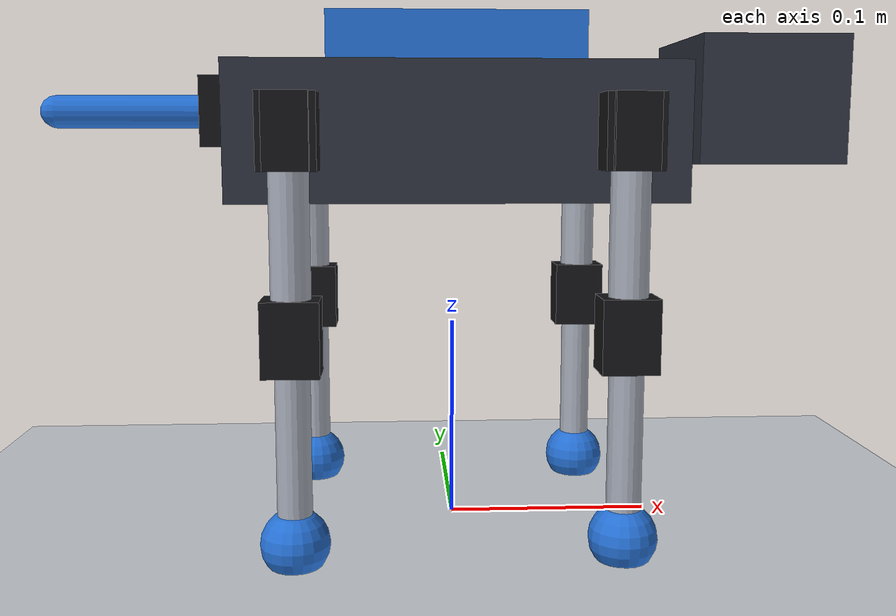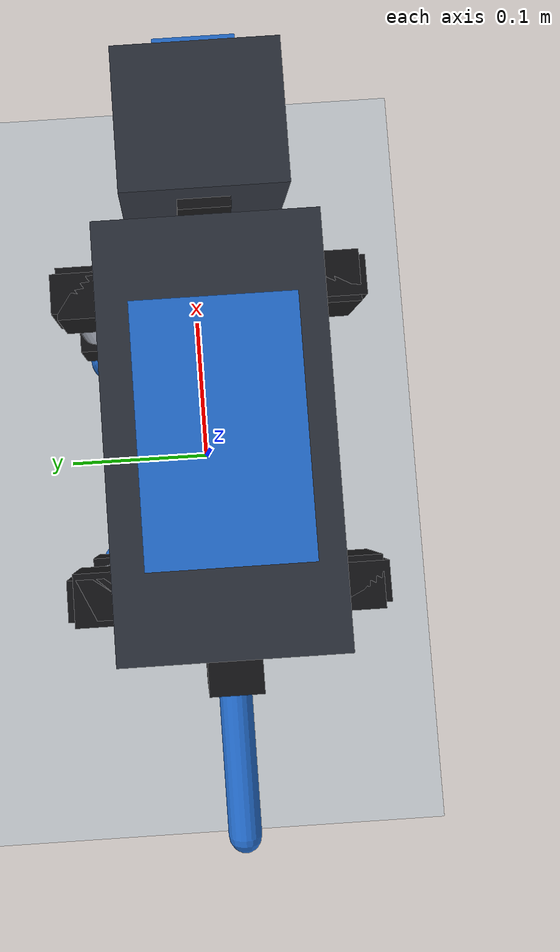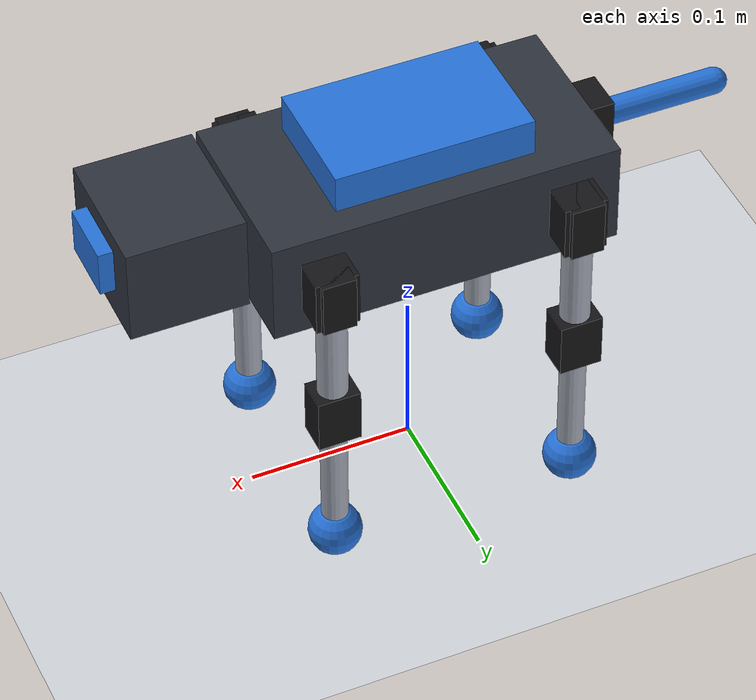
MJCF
<mujoco model="MicroDog_preview">
  <compiler angle="degree" autolimits="true"/>
  <option timestep="0.002" gravity="0 0 -9.81" integrator="implicitfast"/>

  <visual>
    <headlight diffuse="0.75 0.75 0.75" ambient="0.35 0.35 0.35" specular="0.2 0.2 0.2"/>
    <global azimuth="135" elevation="-18"/>
  </visual>

  <default>
    <joint damping="0.12" armature="0.0002"/>
    <geom friction="0.9 0.02 0.002" condim="3"/>
    <position kp="2.5" forcerange="-0.52 0.52"/>
  </default>

  <asset>
    <material name="body_mat" rgba="0.18 0.20 0.24 1"/>
    <material name="motor_mat" rgba="0.08 0.08 0.09 1"/>
    <material name="link_mat" rgba="0.65 0.67 0.72 1"/>
    <material name="accent_mat" rgba="0.15 0.45 0.85 1"/>
    <material name="ground_mat" rgba="0.82 0.84 0.86 1"/>
  </asset>

  <!-- 충돌 비트: 1=일반 형상, 2=몸통, 4=머리 yaw 모터,
       8=머리 roll 모터/외피, 16=꼬리 pitch 및 다리 upper 모터.
       2↔16, 4↔8만 제외하며 나머지 자기충돌과 지면 충돌은 유지한다. -->
  <worldbody>
    <light pos="0 -1 2" dir="0 0 -1" directional="true"/>
    <geom name="floor" type="plane" size="2 2 0.05" material="ground_mat"/>

    <!-- ~25 cm class MicroDog preview body -->
    <body name="base" pos="0 0 0.19469996363678">
      <freejoint/>
      <geom contype="2" conaffinity="15" name="torso" type="box" size="0.105 0.055 0.032"
            mass="0.42" material="body_mat"/>

      <!-- simple top electronics/battery volume -->
      <geom name="top_pack" type="box" pos="0 0 0.043"
            size="0.060 0.038 0.012" mass="0.13" material="accent_mat"/>

      <!-- head, 3 DOF visual/servo chain -->
      <body name="head_yaw" pos="0.118 0 0.015">
        <joint name="head_yaw_joint" type="hinge" axis="0 0 1" range="-70 70"/>
        <geom contype="4" conaffinity="23" type="box" size="0.010 0.013 0.017" mass="0.018" material="motor_mat"/>
        <body name="head_pitch">
          <joint name="head_pitch_joint" type="hinge" axis="0 1 0" range="-45 45"/>
          <geom type="box" size="0.010 0.013 0.017" mass="0.018" material="motor_mat"/>
          <body name="head_roll">
            <joint name="head_roll_joint" type="hinge" axis="1 0 0" range="-35 35"/>
            <geom contype="8" conaffinity="27" type="box" size="0.010 0.013 0.017" mass="0.018" material="motor_mat"/>
            <geom contype="8" conaffinity="27" name="head_shell" type="box" pos="0.030 0 0"
                  size="0.035 0.040 0.030" mass="0.07" material="body_mat"/>
            <geom name="camera" type="box" pos="0.066 0 0.004"
                  size="0.008 0.020 0.014" mass="0.01" material="accent_mat"/>
          </body>
        </body>
      </body>

      <!-- tail, 2 DOF -->
      <body name="tail_yaw" pos="-0.112 0 0.010">
        <joint name="tail_yaw_joint" type="hinge" axis="0 0 1" range="-55 55"/>
        <geom type="box" size="0.010 0.013 0.017" mass="0.018" material="motor_mat"/>
        <body name="tail_pitch">
          <joint name="tail_pitch_joint" type="hinge" axis="0 1 0" range="-35 35"/>
          <geom contype="16" conaffinity="29" type="box" size="0.010 0.013 0.017" mass="0.018" material="motor_mat"/>
          <geom type="capsule" fromto="-0.005 0 0 -0.080 0 0"
                size="0.008" mass="0.025" material="accent_mat"/>
        </body>
      </body>

      <!-- FRONT LEFT -->
      <body name="fl_hip_roll" pos="0.075 0.065 0">
        <joint name="fl_hip_roll_joint" type="hinge" axis="1 0 0" range="-35 35"/>
        <geom type="box" size="0.010 0.013 0.017" mass="0.018" material="motor_mat"/>
        <body name="fl_upper">
          <joint name="fl_hip_pitch_joint" type="hinge" axis="0 1 0" range="-80 80"/>
          <geom contype="16" conaffinity="29" type="box" size="0.013 0.010 0.017" mass="0.018" material="motor_mat"/>
          <geom type="capsule" fromto="0 0 -0.015 0 0 -0.090"
                size="0.009" mass="0.025" material="link_mat"/>
          <body name="fl_lower" pos="0 0 -0.090">
            <joint name="fl_knee_joint" type="hinge" axis="0 1 0" range="-5 135"/>
            <geom type="box" size="0.013 0.010 0.017" mass="0.018" material="motor_mat"/>
            <geom type="capsule" fromto="0 0 -0.015 0 0 -0.090"
                  size="0.008" mass="0.020" material="link_mat"/>
            <geom type="sphere" pos="0 0 -0.095" size="0.016"
                  mass="0.008" friction="1.2 0.03 0.003" material="accent_mat"/>
          </body>
        </body>
      </body>

      <!-- FRONT RIGHT -->
      <body name="fr_hip_roll" pos="0.075 -0.065 0">
        <joint name="fr_hip_roll_joint" type="hinge" axis="1 0 0" range="-35 35"/>
        <geom type="box" size="0.010 0.013 0.017" mass="0.018" material="motor_mat"/>
        <body name="fr_upper">
          <joint name="fr_hip_pitch_joint" type="hinge" axis="0 1 0" range="-80 80"/>
          <geom contype="16" conaffinity="29" type="box" size="0.013 0.010 0.017" mass="0.018" material="motor_mat"/>
          <geom type="capsule" fromto="0 0 -0.015 0 0 -0.090"
                size="0.009" mass="0.025" material="link_mat"/>
          <body name="fr_lower" pos="0 0 -0.090">
            <joint name="fr_knee_joint" type="hinge" axis="0 1 0" range="-5 135"/>
            <geom type="box" size="0.013 0.010 0.017" mass="0.018" material="motor_mat"/>
            <geom type="capsule" fromto="0 0 -0.015 0 0 -0.090"
                  size="0.008" mass="0.020" material="link_mat"/>
            <geom type="sphere" pos="0 0 -0.095" size="0.016"
                  mass="0.008" friction="1.2 0.03 0.003" material="accent_mat"/>
          </body>
        </body>
      </body>

      <!-- REAR LEFT -->
      <body name="rl_hip_roll" pos="-0.075 0.065 0">
        <joint name="rl_hip_roll_joint" type="hinge" axis="1 0 0" range="-35 35"/>
        <geom type="box" size="0.010 0.013 0.017" mass="0.018" material="motor_mat"/>
        <body name="rl_upper">
          <joint name="rl_hip_pitch_joint" type="hinge" axis="0 1 0" range="-80 80"/>
          <geom contype="16" conaffinity="29" type="box" size="0.013 0.010 0.017" mass="0.018" material="motor_mat"/>
          <geom type="capsule" fromto="0 0 -0.015 0 0 -0.090"
                size="0.009" mass="0.025" material="link_mat"/>
          <body name="rl_lower" pos="0 0 -0.090">
            <joint name="rl_knee_joint" type="hinge" axis="0 1 0" range="-5 135"/>
            <geom type="box" size="0.013 0.010 0.017" mass="0.018" material="motor_mat"/>
            <geom type="capsule" fromto="0 0 -0.015 0 0 -0.090"
                  size="0.008" mass="0.020" material="link_mat"/>
            <geom type="sphere" pos="0 0 -0.095" size="0.016"
                  mass="0.008" friction="1.2 0.03 0.003" material="accent_mat"/>
          </body>
        </body>
      </body>

      <!-- REAR RIGHT -->
      <body name="rr_hip_roll" pos="-0.075 -0.065 0">
        <joint name="rr_hip_roll_joint" type="hinge" axis="1 0 0" range="-35 35"/>
        <geom type="box" size="0.010 0.013 0.017" mass="0.018" material="motor_mat"/>
        <body name="rr_upper">
          <joint name="rr_hip_pitch_joint" type="hinge" axis="0 1 0" range="-80 80"/>
          <geom contype="16" conaffinity="29" type="box" size="0.013 0.010 0.017" mass="0.018" material="motor_mat"/>
          <geom type="capsule" fromto="0 0 -0.015 0 0 -0.090"
                size="0.009" mass="0.025" material="link_mat"/>
          <body name="rr_lower" pos="0 0 -0.090">
            <joint name="rr_knee_joint" type="hinge" axis="0 1 0" range="-5 135"/>
            <geom type="box" size="0.013 0.010 0.017" mass="0.018" material="motor_mat"/>
            <geom type="capsule" fromto="0 0 -0.015 0 0 -0.090"
                  size="0.008" mass="0.020" material="link_mat"/>
            <geom type="sphere" pos="0 0 -0.095" size="0.016"
                  mass="0.008" friction="1.2 0.03 0.003" material="accent_mat"/>
          </body>
        </body>
      </body>
    </body>
  </worldbody>

  <actuator>
    <position joint="fl_hip_roll_joint"  ctrlrange="-0.6108652381980153 0.6108652381980153"/>
    <position joint="fl_hip_pitch_joint" ctrlrange="-1.3962634015954636 1.3962634015954636"/>
    <position joint="fl_knee_joint"      ctrlrange="-0.087266462599716474 2.3561944901923448"/>

    <position joint="fr_hip_roll_joint"  ctrlrange="-0.6108652381980153 0.6108652381980153"/>
    <position joint="fr_hip_pitch_joint" ctrlrange="-1.3962634015954636 1.3962634015954636"/>
    <position joint="fr_knee_joint"      ctrlrange="-0.087266462599716474 2.3561944901923448"/>

    <position joint="rl_hip_roll_joint"  ctrlrange="-0.6108652381980153 0.6108652381980153"/>
    <position joint="rl_hip_pitch_joint" ctrlrange="-1.3962634015954636 1.3962634015954636"/>
    <position joint="rl_knee_joint"      ctrlrange="-0.087266462599716474 2.3561944901923448"/>

    <position joint="rr_hip_roll_joint"  ctrlrange="-0.6108652381980153 0.6108652381980153"/>
    <position joint="rr_hip_pitch_joint" ctrlrange="-1.3962634015954636 1.3962634015954636"/>
    <position joint="rr_knee_joint"      ctrlrange="-0.087266462599716474 2.3561944901923448"/>

    <position joint="head_yaw_joint"   ctrlrange="-1.2217304763960306 1.2217304763960306"/>
    <position joint="head_pitch_joint" ctrlrange="-0.78539816339744828 0.78539816339744828"/>
    <position joint="head_roll_joint"  ctrlrange="-0.6108652381980153 0.6108652381980153"/>
    <position joint="tail_yaw_joint"   ctrlrange="-0.95993108859688125 0.95993108859688125"/>
    <position joint="tail_pitch_joint" ctrlrange="-0.6108652381980153 0.6108652381980153"/>
  </actuator>

  <keyframe>
    <key name="neutral_standing"
         qpos="0 0 0.19469996363678 1 0 0 0
               0 0 0 0 0
               0 -0.269041131269648 0.523598775598299
               0 -0.269041131269648 0.523598775598299
               0 -0.269041131269648 0.523598775598299
               0 -0.269041131269648 0.523598775598299"
         ctrl="0 -0.269041131269648 0.523598775598299
               0 -0.269041131269648 0.523598775598299
               0 -0.269041131269648 0.523598775598299
               0 -0.269041131269648 0.523598775598299
               0 0 0 0 0"/>
  </keyframe>
</mujoco>
